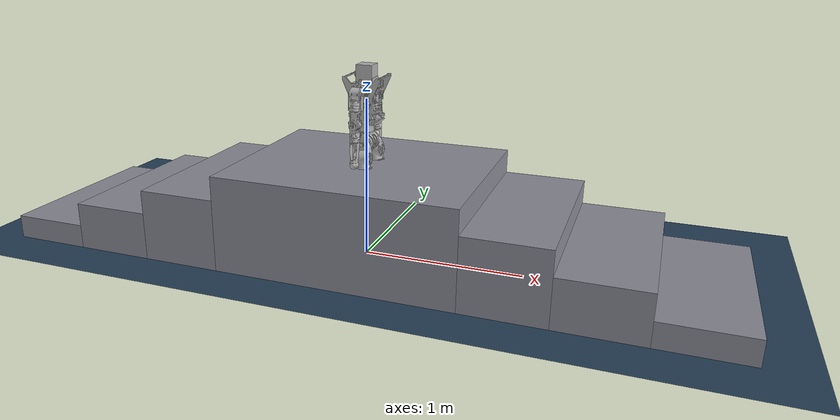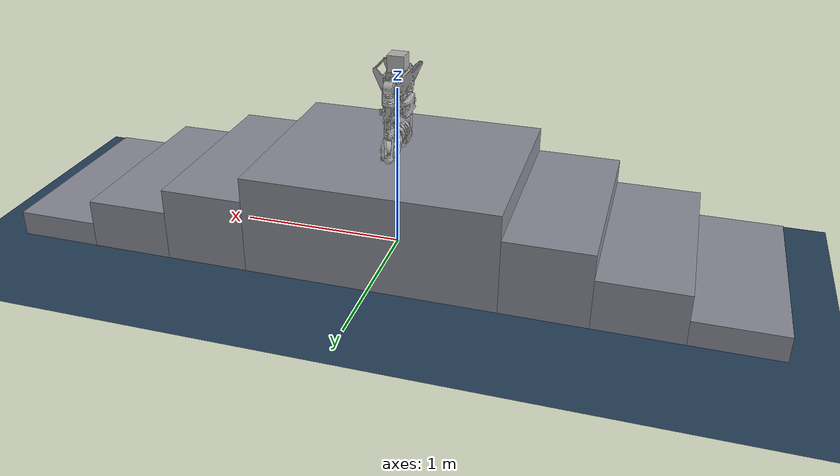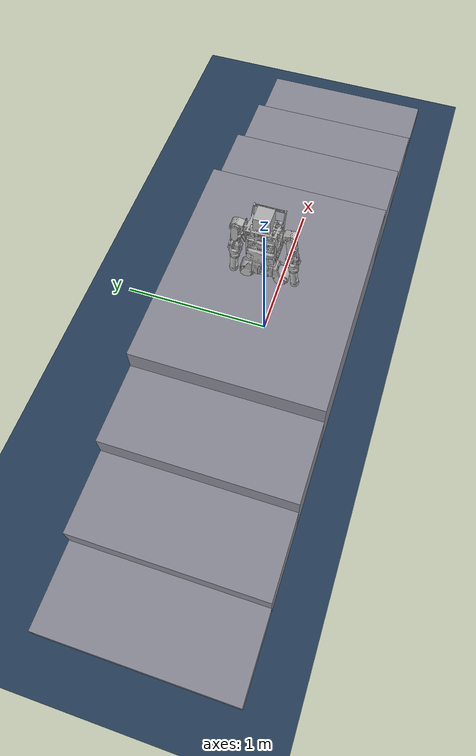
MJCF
<mujoco model="minim1 stair scene">
  <include file="Mini_M1v1.xml"/>

  <statistic center="0.0 0.0 0.6" extent="3.5"/>

  <visual>
    <headlight diffuse="0.6 0.6 0.6" ambient="0.3 0.3 0.3" specular="0 0 0"/>
    <rgba haze="0.15 0.25 0.35 1"/>
    <global azimuth="-130" elevation="-20"/>
  </visual>

  <asset>
    <texture type="skybox" builtin="gradient" rgb1="0.3 0.5 0.7" rgb2="0 0 0" width="512" height="3072"/>
    <texture type="2d" name="groundplane" builtin="checker" mark="edge" rgb1="0.2 0.3 0.4" rgb2="0.1 0.2 0.3"
      markrgb="0.8 0.8 0.8" width="300" height="300"/>
    <material name="groundplane" texture="groundplane" texuniform="true" texrepeat="5 5" reflectance="0.2"/>
    <material name="stair" rgba="0.55 0.55 0.6 1" reflectance="0.1"/>
  </asset>

  <worldbody>
    <light pos="0 0 1.5" dir="0 0 -1" directional="true"/>

    <!-- Ground at z=0: the robot spawns at the origin standing on the floor. -->
    <geom name="floor" size="0 0 0.05" type="plane" material="groundplane"
      friction="1.0 0.01 0.001"/>

    <body name="stairs" pos="0 0 0">
      <!-- ascent (near side): edge at x=-2.0 -->
      <geom name="stair_up_1" type="box" material="stair" friction="1.0 0.01 0.001"
        pos="-2.00 0 0.075" size="0.25 0.6 0.075"/>  <!-- tread z=0.15, x[-2.25,-1.75] -->
      <geom name="stair_up_2" type="box" material="stair" friction="1.0 0.01 0.001"
        pos="-1.50 0 0.150" size="0.25 0.6 0.150"/>  <!-- tread z=0.30, x[-1.75,-1.25] -->
      <geom name="stair_up_3" type="box" material="stair" friction="1.0 0.01 0.001"
        pos="-1.00 0 0.225" size="0.25 0.6 0.225"/>  <!-- tread z=0.45, x[-1.25,-0.75] -->

      <!-- top platform: tread z=0.60, 1.5 m deep, x[-0.75,0.75]; robot spawns
           at its center (0,0), rotated 90° about z relative to this axis. -->
      <geom name="stair_top" type="box" material="stair" friction="1.0 0.01 0.001"
        pos="0.00 0 0.300" size="0.75 0.6 0.300"/>

      <!-- descent (far side, mirror of the ascent about the platform center) -->
      <geom name="stair_down_3" type="box" material="stair" friction="1.0 0.01 0.001"
        pos="1.00 0 0.225" size="0.25 0.6 0.225"/>  <!-- tread z=0.45, x[0.75,1.25] -->
      <geom name="stair_down_2" type="box" material="stair" friction="1.0 0.01 0.001"
        pos="1.50 0 0.150" size="0.25 0.6 0.150"/>  <!-- tread z=0.30, x[1.25,1.75] -->
      <geom name="stair_down_1" type="box" material="stair" friction="1.0 0.01 0.001"
        pos="2.00 0 0.075" size="0.25 0.6 0.075"/>  <!-- tread z=0.15, x[1.75,2.25] -->
    </body>
  </worldbody>

  <keyframe>
    <key name="on_platform_perpendicular"
      qpos="0 0 1.45  0.70710678 0 0 0.70710678  0 0 0 0 0 0 0 0 0 0 0 0 0 0 0 0 0 0 0 0 0 0 0"/>
  </keyframe>
</mujoco>

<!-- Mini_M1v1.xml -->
<mujoco model="Mini_23dof_rev_1_0">
    <compiler angle="radian" meshdir="meshes_reduce/" autolimits="true"/>

    <default>
        <default class="Mini1">
            <geom condim="1" contype="0" conaffinity="0"/>
            <joint damping="0.05" armature="0.01" frictionloss="0.2"/>

            <default class="hip">
                <default class="hip_pitch">
                    <joint axis="0 1 0" range="-2.67456 2.9105" actuatorfrcrange="-130 130" armature="0.063828" frictionloss="0.9"/>
                </default>
                <default class="hip_roll">
                    <joint axis="1 0 0" actuatorfrcrange="-132 132" armature="0.093956787" frictionloss="0.15"/>
                </default>
                <default class="hip_yaw">
                    <joint axis="0 0 1" range="-2.44346  2.44346" actuatorfrcrange="-70 70" armature="0.057648938" frictionloss="0.5"/>
                </default>
            </default>
            <default class="knee">
                <joint axis="0 1 0" range="-0.19199 2.70526" actuatorfrcrange="-130 130" armature="0.063828" frictionloss="0.9"/>
            </default>
            <default class="ankle">
                <default class="ankle_pitch">
                    <joint axis="0 1 0" range="-0.87266 0.5236" actuatorfrcrange="-36 36" armature="0.023328" frictionloss="0.08"/>
                </default>
                <default class="ankle_roll">
                    <joint axis="1 0 0" range="-0.2618 0.2618" actuatorfrcrange="-36 36" armature="0.023328" frictionloss="0.08"/>
                </default>
            </default>
            <default class="waist">
                <joint axis="0 0 1" range="-2.79252 2.79252" actuatorfrcrange="-70 70" armature="0.057648938" frictionloss="0.5"/>
            </default>
            <default class="shoulder">
                <default class="shoulder_pitch">
                    <joint axis="0 1 0" range="-3.14159 2.44346" actuatorfrcrange="-36 36" armature="0.023328" frictionloss="0.08"/>
                </default>
                <default class="shoulder_roll">
                    <joint axis="1 0 0" actuatorfrcrange="-36 36" armature="0.023328" frictionloss="0.08"/>
                </default>
                <default class="shoulder_yaw">
                    <joint axis="0 0 1" range="-2.44346 2.44346" actuatorfrcrange="-36 36" armature="0.023328" frictionloss="0.08"/>
                </default>
            </default>
            <default class="elbow">
                <joint axis="0 1 0" range="-2.26893 1.5708" actuatorfrcrange="-36 36" armature="0.023328" frictionloss="0.08"/>
            </default>
            <default class="wrist">
                <default class="wrist_yaw">
                    <joint axis="0 0 1" range="-2.44346 2.44346" actuatorfrcrange="-36 36" armature="0.023328" frictionloss="0.08"/>
                </default>
            </default>

            <default class="visual">
                <geom group="2" type="mesh" density="0" material="silver" contype="0" conaffinity="0"/>
            </default>
            <default class="collision">
                <geom group="3" rgba=".2 .6 .2 .3" type="capsule" contype="1" conaffinity="1"/>
                <default class="foot_capsule">
                <geom type="capsule" size="0.007"/>
                </default>
            </default>
            <site group="5" rgba="1 0 0 1"/>
        </default>
    </default>

    <asset>
        <material name="silver" rgba="0.7 0.7 0.7 1"/>
        <material name="black" rgba="0.2 0.2 0.2 1"/>
        <material name="gold" rgba="1 0.84 0 1"/>
        <material name="red_staff" rgba="0.8 0 0 1"/>

        <mesh name="pelvis" file="pelvis_link.STL"/>

        <mesh name="left_hip_pitch_link" file="left_hip_pitch_link.STL" />
        <mesh name="left_hip_roll_link" file="left_hip_roll_link.STL" />
        <mesh name="left_hip_yaw_link" file="left_hip_yaw_link.STL" />
        <mesh name="left_knee_link" file="left_knee_link.STL" />
        <mesh name="left_ankle_pitch_link" file="left_ankle_pitch_link.STL" />
        <mesh name="left_ankle_roll_link" file="left_ankle_roll_link.STL" />

        <mesh name="right_hip_pitch_link" file="right_hip_pitch_link.STL" />
        <mesh name="right_hip_roll_link" file="right_hip_roll_link.STL" />
        <mesh name="right_hip_yaw_link" file="right_hip_yaw_link.STL" />
        <mesh name="right_knee_link" file="right_knee_link.STL" />
        <mesh name="right_ankle_pitch_link" file="right_ankle_pitch_link.STL" />
        <mesh name="right_ankle_roll_link" file="right_ankle_roll_link.STL" />

        <mesh name="torso_link" file="torso_link.STL" />
        <mesh name="left_shoulder_pitch_link" file="left_shoulder_pitch_link.STL" />
        <mesh name="left_shoulder_roll_link" file="left_shoulder_roll_link.STL" />
        <mesh name="left_shoulder_yaw_link" file="left_shoulder_yaw_link.STL" />
        <mesh name="left_elbow_link" file="left_elbow_link.STL" />
        <mesh name="left_wrist_yaw_link" file="left_wrist_yaw_link.STL"/>

        <mesh name="right_shoulder_pitch_link" file="right_shoulder_pitch_link.STL" />
        <mesh name="right_shoulder_roll_link" file="right_shoulder_roll_link.STL" />
        <mesh name="right_shoulder_yaw_link" file="right_shoulder_yaw_link.STL" />
        <mesh name="right_elbow_link" file="right_elbow_link.STL" />
        <mesh name="right_wrist_yaw_link" file="right_wrist_yaw_link.STL"/>

    </asset>

  <worldbody>
    <body name="pelvis_link" pos="0 0 0.8" childclass="Mini1" quat="1 0 0 0">
      <inertial pos="-2.035e-05 -1.735e-05 -0.06318792" quat="0.999997 0.001049373 -0.002216634 -4.63609e-05" mass="2.63847571" diaginertia="0.006633289 0.004980845 0.006152766" />
      <freejoint name="floating_base_joint" />
      <geom class="visual" mesh="pelvis" />
      <geom name="pelvis_collision" pos="0 0 -0.065" class="collision" type="sphere" size="0.065" />
      <site name="imu_in_pelvis" size="0.01" pos="0 0 -0.12153" />

      <body name="left_hip_pitch_link" pos="0 0.0625 -0.06475" quat="1 0 0 0">
        <inertial pos="0.00555412 0.02072691 -0.01707044" quat="0.1434531 0.960055 -0.1177593 -0.2094" mass="0.54453771" diaginertia="0.0008610686 0.001378651 0.0006912709" />
        <joint name="left_hip_pitch_joint" pos="0 0 0" class="hip_pitch" />
        <geom class="visual" mesh="left_hip_pitch_link" />

        <body name="left_hip_roll_link" pos="0.01176 0.0455 -0.074072" quat="0.9969032 0 -0.07863872 0">
          <inertial pos="0.00511189 -7.346e-05 -0.01291473" quat="0.9970261 0.003968313 -0.03440506 -0.06884336" mass="1.70434274" diaginertia="0.002928036 0.002886656 0.002041599" />
          <joint name="left_hip_roll_joint" pos="0 0 0" range="-0.5235988 2.268928" class="hip_roll" />
          <geom class="visual" mesh="left_hip_roll_link" />
          <geom name="left_hip_collision" class="collision" size="0.045" fromto="0.00 0.0 0.005 0.00 0.0 -0.12" />

          <body name="left_hip_yaw_link" pos="0.0015 0 -0.076" quat="1 0 0 0">
            <inertial pos="-0.01998504 -0.00065443 -0.08182325" quat="0.7406541 -0.1363333 -0.1656454 0.6367153" mass="2.72679645" diaginertia="0.01122164 0.01061735 0.003574768" />
            <joint name="left_hip_yaw_joint" pos="0 0 0" class="hip_yaw"/>
            <geom class="visual" mesh="left_hip_yaw_link" />
            <geom name="left_thigh_collision" pos="0.022 0.0 -0.11" euler ="0 0.5 0" class="collision" type="box" size="0.005 0.03 0.03" />

            <body name="left_knee_link" pos="-0.045 0 -0.13245" quat="0.9969032 0 0.07863872 0">
              <inertial pos="0.02687549 0.00022296 -0.11400047" quat="0.9996946 0.0033013 -0.006284745 -0.02367135" mass="1.89004803" diaginertia="0.009995922 0.009838597 0.002025321" />
              <joint name="left_knee_joint" pos="0 0 0" class="knee" />
              <geom class="visual" mesh="left_knee_link" rgba="0.7 0.7 0.7 0.5" />
              <geom name="left_knee_collision" euler="1.5707 0 0" class="collision" type="cylinder" size="0.048 0.045" />
              <geom name="left_shin_collision" class="collision" size="0.042" fromto="0.035 0.0 -0.095 0.018 0.0 -0.18" />

              <body name="left_ankle_pitch_link" pos="0 0 -0.265" quat="1 0 0 0">
                <inertial pos="-0.00032043 0.0 -3.673e-05" quat="0.5054121 0.4945287 0.4945287 0.5054121" mass="0.10087325" diaginertia="2.116e-05 2.14974e-05 5.872598e-06" />
                <joint name="left_ankle_pitch_joint" pos="0 0 0" class="ankle_pitch"/>
                <geom class="visual" mesh="left_ankle_pitch_link" />

                <body name="left_ankle_roll_link" pos="0 0 0" quat="1 0 0 0">
                  <inertial pos="0.00753543 -1.02e-06 -0.02294713" quat="0.0001515352 -0.6221758 9.484592e-05 -0.7828776" mass="0.97095099" diaginertia="0.002194273 0.00223876 0.0005364067" />
                  <joint name="left_ankle_roll_joint" pos="0 0 0" class="ankle_roll"/>
                  <geom class="visual" mesh="left_ankle_roll_link" />
                  <geom name="left_foot1_collision" class="foot_capsule" fromto="0.03 -0.027 -0.045 0.09 -0.027 -0.045" />
                  <geom name="left_foot2_collision" class="foot_capsule" fromto="-0.051 -0.018 -0.045 0.11 -0.018 -0.045" />
                  <geom name="left_foot3_collision" class="foot_capsule" fromto="-0.055 -0.009 -0.045 0.12 -0.009 -0.045" />
                  <geom name="left_foot4_collision" class="foot_capsule" fromto="-0.055 0.0 -0.045 0.12 0.0 -0.045" />
                  <geom name="left_foot5_collision" class="foot_capsule" fromto="-0.055 0.009 -0.045 0.12 0.009 -0.045" />
                  <geom name="left_foot6_collision" class="foot_capsule" fromto="-0.051 0.018 -0.045 0.11 0.018 -0.045" />
                  <geom name="left_foot7_collision" class="foot_capsule" fromto="0.03 0.027 -0.045 0.09 0.027 -0.045" />
                </body>
              </body>
            </body>
          </body>
        </body>
      </body>

      <body name="right_hip_pitch_link" pos="0 -0.0625 -0.06475" quat="1 0 0 0">
        <inertial pos="0.00555321 -0.02072693 -0.01707039" quat="0.9599627 0.1434297 0.2097806 0.1178632" mass="0.54454024" diaginertia="0.0008611428 0.001378681 0.0006911858" />
        <joint name="right_hip_pitch_joint" pos="0 0 0" class="hip_pitch"/>
        <geom class="visual" mesh="right_hip_pitch_link" />

        <body name="right_hip_roll_link" pos="0.01176 -0.0455 -0.074072" quat="0.9969032 0 -0.07863872 0">
          <inertial pos="0.00506376 5.988e-05 -0.01287545" quat="0.998806 -0.00275105 -0.03599963 0.03290963" mass="1.7026082" diaginertia="0.002926713 0.002882837 0.002036909" />
          <joint name="right_hip_roll_joint" pos="0 0 0" range="-2.268928 0.5235988" class="hip_roll"/>
          <geom class="visual" mesh="right_hip_roll_link" />
          <geom name="right_hip_collision" class="collision" size="0.045" fromto="0.00 0.0 0.005 0.00 0.0 -0.12" />

          <body name="right_hip_yaw_link" pos="0.0015 0 -0.076" quat="1 0 0 0">
            <inertial pos="-0.01996397 0.00082389 -0.08181562" quat="0.648357 -0.1634072 -0.1387214 0.7305393" mass="2.72679642" diaginertia="0.0112118 0.0105895 0.003601123" />
            <joint name="right_hip_yaw_joint" pos="0 0 0" class="hip_yaw"/>
            <geom class="visual" mesh="right_hip_yaw_link" />
            <geom name="right_thigh_collision" pos="0.022 0.0 -0.11" euler ="0 0.5 0" class="collision" type="box" size="0.005 0.03 0.03" />

            <body name="right_knee_link" pos="-0.045 0 -0.13245" quat="0.9969032 0 0.07863872 0">
              <inertial pos="0.0268749 -0.00022302 -0.11400033" quat="0.9996785 -0.003246467 -0.006290509 0.02434645" mass="1.89004634" diaginertia="0.009995613 0.009839117 0.00202455" />
              <joint name="right_knee_joint" pos="0 0 0" class="knee" />
              <geom class="visual" mesh="right_knee_link" rgba="0.7 0.7 0.7 0.5" />
              <geom name="right_knee_collision" euler="1.5707 0 0" class="collision" type="cylinder" size="0.048 0.045" />
              <geom name="right_shin_collision" class="collision" size="0.042" fromto="0.035 0.0 -0.095 0.018 0.0 -0.18" />

              <body name="right_ankle_pitch_link" pos="0 0 -0.265" quat="1 0 0 0">
                <inertial pos="-0.00032043 0.0 -3.673e-05" quat="0.5054121 0.4945287 0.4945287 0.5054121" mass="0.10087325" diaginertia="2.116e-05 2.14974e-05 5.872598e-06" />
                <joint name="right_ankle_pitch_joint" pos="0 0 0" class="ankle_pitch"/>
                <geom class="visual" mesh="right_ankle_pitch_link" />

                <body name="right_ankle_roll_link" pos="0 0 0" quat="1 0 0 0">
                  <inertial pos="0.00753543 -1.02e-06 -0.02294713" quat="0.0001515352 -0.6221758 9.484592e-05 -0.7828776" mass="0.97095099" diaginertia="0.002194273 0.00223876 0.0005364067" />
                  <joint name="right_ankle_roll_joint" pos="0 0 0" class="ankle_roll"/>
                  <geom class="visual" mesh="right_ankle_roll_link" />
                  <geom name="right_foot1_collision" class="foot_capsule" fromto="0.03 -0.027 -0.045 0.09 -0.027 -0.045" />
                  <geom name="right_foot2_collision" class="foot_capsule" fromto="-0.051 -0.018 -0.045 0.11 -0.018 -0.045" />
                  <geom name="right_foot3_collision" class="foot_capsule" fromto="-0.055 -0.009 -0.045 0.12 -0.009 -0.045" />
                  <geom name="right_foot4_collision" class="foot_capsule" fromto="-0.055 0.0 -0.045 0.12 0.0 -0.045" />
                  <geom name="right_foot5_collision" class="foot_capsule" fromto="-0.055 0.009 -0.045 0.12 0.009 -0.045" />
                  <geom name="right_foot6_collision" class="foot_capsule" fromto="-0.051 0.018 -0.045 0.11 0.018 -0.045" />
                  <geom name="right_foot7_collision" class="foot_capsule" fromto="0.03 0.027 -0.045 0.09 0.027 -0.045" />
                </body>
              </body>
            </body>
          </body>
        </body>
      </body>

      <body name="torso_link" pos="0 0 0" quat="1 0 0 0">
        <inertial pos="-0.00500734 -3.292e-05 0.17142906" quat="0.9997297 -0.0004759538 -0.0231684 -0.001872702" mass="10.35038542" diaginertia="0.07327112 0.06085684 0.03195587" />
        <joint name="waist_joint" pos="0 0 0" class="waist"/>
        <geom class="visual" mesh="torso_link" />
        <geom name="torso_collision" class="collision" type="box" size="0.08 0.1 0.125" pos="0 0 0.185" />
        <geom name="torso_connect_collision" class="collision" type="cylinder" size="0.045 0.025" pos="0 0 0.03" />
        <body name="head_link" pos="0 0 0.31" quat="1 0 0 0">
          <inertial pos="0 0 0.05" quat="1 0 0 0" mass="3.0" diaginertia="0.003333 0.003333 0.003333" />
          <geom name="head_visual" class="visual" type="box" size="0.05 0.05 0.05" pos="0 0 0.05" />
          <geom name="head_collision" class="collision" type="box" size="0.05 0.05 0.05" pos="0 0 0.05" />
        </body>
        <body name="left_shoulder_pitch_link" pos="0 0.1145 0.262" quat="1 0 0 0">
          <inertial pos="0.00314586 0.04206211 -0.00024138" quat="0.7211335 0.6616006 -0.2047462 0.01817094" mass="0.64542046" diaginertia="0.0003139259 0.0003248269 0.0002372973" />
          <joint name="left_shoulder_pitch_joint" pos="0 0 0" class="shoulder_pitch"/>
          <geom class="visual" mesh="left_shoulder_pitch_link" />

          <body name="left_shoulder_roll_link" pos="0 0.0475 0" quat="0.999229 0.03925991 0 0">
            <inertial pos="-0.00414937 -3.05e-06 -0.07006253" quat="0.9989979 -6.887889e-05 -0.04475592 0.0002000639" mass="0.62292962" diaginertia="0.000407649 0.00058823 0.0003077209" />
            <joint name="left_shoulder_roll_joint" pos="0 0 0" range="-0.20944 3.35103" class="shoulder_roll"/>
            <geom class="visual" mesh="left_shoulder_roll_link" />
            <geom name="left_shoulder_roll_collision" class="collision" type="cylinder" pos="-0.006 0 0" euler="0 1.57 0" size="0.0355 0.04" />

            <body name="left_shoulder_yaw_link" pos="-0.00445 0 -0.1005" quat="1 0 0 0">
              <inertial pos="-0.00012378 0.00378958 -0.07324716" quat="0.7299428 -0.02070021 0.01599061 0.6830075" mass="0.59877676" diaginertia="0.0005166877 0.000579196 0.0001842264" />
              <joint name="left_shoulder_yaw_joint" pos="0 0 0" class="shoulder_yaw"/>
              <geom class="visual" mesh="left_shoulder_yaw_link" />
              <geom name="left_shoulder_yaw_collision" class="collision" size="0.031" fromto="0.00 0.0 0.01 0.00 0.0 0.035" />

              <body name="left_elbow_link" pos="0 0 -0.08575" quat="1 0 0 0">
                <inertial pos="-8.542e-05 -0.00010653 -0.06634342" quat="0.7069462 0.01515581 -0.02019047 0.7068166" mass="0.54431198" diaginertia="0.0003206852 0.0004059513 0.0001824234" />
                <joint name="left_elbow_joint" pos="0 0 0" class="elbow"/>
                <geom class="visual" mesh="left_elbow_link" />
                <geom name="left_elbow_collision" class="collision" type="cylinder" pos="0 -0.002 0" euler="1.57 0 0" size="0.03 0.04"/>

                <body name="left_wrist_yaw_link" pos="0 0 -0.09975" quat="1 0 0 0">
                  <inertial pos="0.00019465 -1.775e-05 -0.07703047" quat="0.9999951 -0.0002454865 -0.003115703 0.0002942441" mass="0.58918937" diaginertia="0.001690944 0.00180045 0.0002883752" />
                  <joint name="left_wrist_yaw_joint" pos="0 0 0" class="wrist_yaw"/>
                  <geom class="visual" mesh="left_wrist_yaw_link" />
                  <geom name="left_wrist_yaw_collision" class="collision" size="0.025" fromto="0.0 0.0 -0.138 0.0 0.0 0.04" />
                </body>
              </body>
            </body>
          </body>
        </body>

        <body name="right_shoulder_pitch_link" pos="0 -0.1145 0.262" quat="1 0 0 0">
          <inertial pos="0.00313918 -0.04207025 -0.00024128" quat="0.6607713 0.72094 -0.02063244 0.2078488" mass="0.64561369" diaginertia="0.0003141218 0.0003251634 0.0002373848" />
          <joint name="right_shoulder_pitch_joint" pos="0 0 0" class="shoulder_pitch"/>
          <geom class="visual" mesh="right_shoulder_pitch_link" />

          <body name="right_shoulder_roll_link" pos="0 -0.0475 0" quat="0.999229 -0.03925991 0 0">
            <inertial pos="-0.00415019 3.05e-06 -0.07006244" quat="0.9989683 6.88439e-05 -0.04541258 -0.0002002549" mass="0.62293181" diaginertia="0.0004076736 0.00058816 0.0003076264" />
            <joint name="right_shoulder_roll_joint" pos="0 0 0" range="-3.35103 0.20944" class="shoulder_roll"/>
            <geom class="visual" mesh="right_shoulder_roll_link" />
            <geom name="right_shoulder_roll_collision" class="collision" type="cylinder" pos="-0.006 0 0" euler="0 1.57 0" size="0.0355 0.04" />

            <body name="right_shoulder_yaw_link" pos="-0.00445 0 -0.1005" quat="1 0 0 0">
              <inertial pos="-0.00012484 -0.00379444 -0.0733066" quat="0.6827903 0.01630446 -0.02144891 0.7301175" mass="0.59887695" diaginertia="0.0005176696 0.000580173 0.0001842174" />
              <joint name="right_shoulder_yaw_joint" pos="0 0 0" class="shoulder_yaw"/>
              <geom class="visual" mesh="right_shoulder_yaw_link" />
              <geom name="right_shoulder_yaw_collision" class="collision" size="0.031" fromto="0.00 0.0 0.01 0.00 0.0 0.035" />

              <body name="right_elbow_link" pos="0 0 -0.08575" quat="1 0 0 0">
                <inertial pos="-7.701e-05 0.00010935 -0.06634495" quat="0.7075314 -0.02031896 0.01505608 0.7062293" mass="0.54437324" diaginertia="0.0003207758 0.0004060826 0.0001824716" />
                <joint name="right_elbow_joint" pos="0 0 0" class="elbow"/>
                <geom class="visual" mesh="right_elbow_link" />
                <geom name="right_elbow_collision" class="collision" type="cylinder" pos="0 0.002 0" euler="1.57 0 0" size="0.03 0.04" />

                <body name="right_wrist_yaw_link" pos="0 0 -0.09975" quat="1 0 0 0">
                  <inertial pos="0.00020246 -1.808e-05 -0.07705982" quat="0.9999947 -0.000250769 -0.003233731 -0.000206746" mass="0.58918937" diaginertia="0.001690819 0.00180028 0.000288351" />
                  <joint name="right_wrist_yaw_joint" pos="0 0 0" class="wrist_yaw"/>
                  <geom class="visual" mesh="right_wrist_yaw_link" />
                  <geom name="right_wrist_yaw_collision" class="collision" size="0.025" fromto="0.0 0.0 -0.138 0.0 0.0 0.04" />
                </body>
              </body>
            </body>
          </body>
        </body>
      </body>
    </body>
  </worldbody>

    <contact>
        <exclude body1="left_elbow_link" body2="left_shoulder_yaw_link"/>
        <exclude body1="right_elbow_link" body2="right_shoulder_yaw_link"/>
        <exclude body1="left_elbow_link" body2="left_wrist_yaw_link"/>
        <exclude body1="right_elbow_link" body2="right_wrist_yaw_link"/>
        <exclude body1="pelvis_link" body2="right_hip_roll_link"/>
        <exclude body1="pelvis_link" body2="left_hip_roll_link"/>
    </contact>
    <sensor>
        <gyro name="imu_ang_vel" site="imu_in_pelvis"/>
        <velocimeter name="imu_lin_vel" site="imu_in_pelvis"/>
        <accelerometer name="imu_lin_acc" site="imu_in_pelvis"/>
        <subtreeangmom name="root_angmom" body="pelvis_link"/>
    </sensor>
</mujoco>
